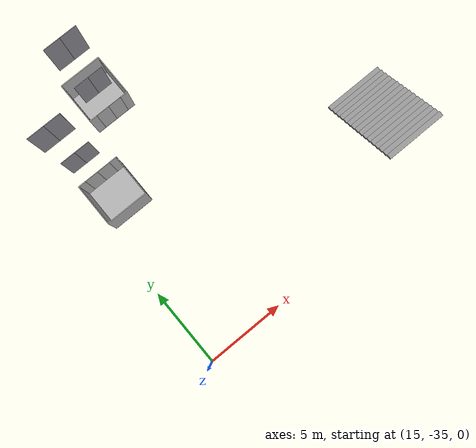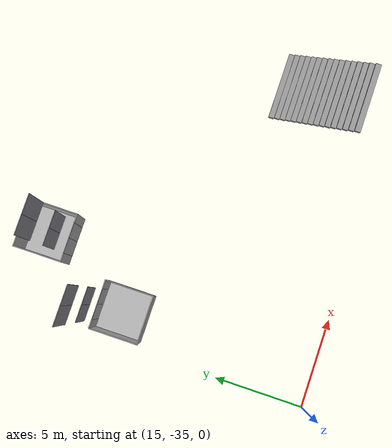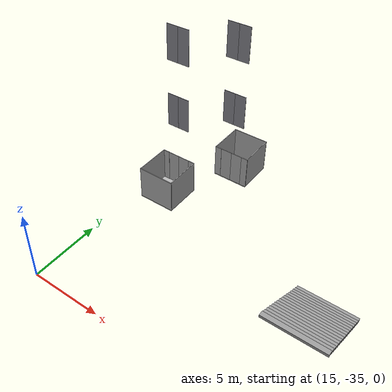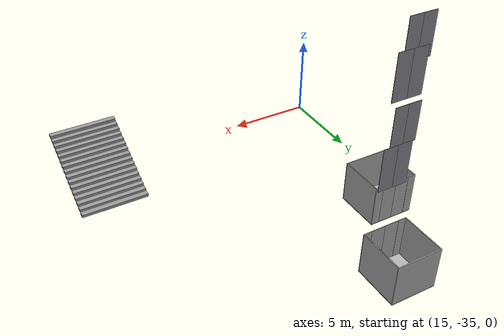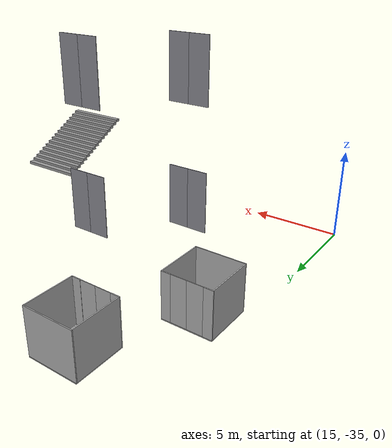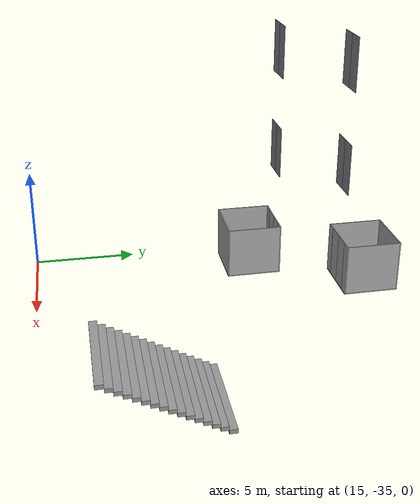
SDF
<sdf version="1.7">
 <world name="world">
  <model name="stairs_new_clone_0">
   <pose>31.03 -26.62000 2.565 0 -0 -1.570796</pose>
   <link name="Stairs">
    <pose>3 1e-06 0 0 -0 0</pose>
    <inertial>
     <mass>1</mass>
     <inertia><ixx>1</ixx><ixy>0</ixy><ixz>0</ixz><iyy>1</iyy><iyz>0</iyz><izz>1</izz></inertia>
    </inertial>
    <visual name="Stairs_Visual_7">
     <pose>0.70875 0 1.09375 0 -0 1.5708</pose>
     <geometry><box><size>3.66 0.28125 0.15625</size></box></geometry>
     <material>
      <script><uri>file://media/materials/scripts/gazebo.material</uri><name>Gazebo/Grey</name></script>
      <ambient>1 1 1 1</ambient>
      <shader type="pixel"><normal_map>__default__</normal_map></shader>
      <diffuse>0.7 0.7 0.7 1</diffuse>
      <specular>0.01 0.01 0.01 1</specular>
      <emissive>0 0 0 1</emissive>
     </material>
     <meta><layer>0</layer></meta>
    </visual>
    <visual name="Stairs_Visual_10">
     <pose>1.5525 0 1.5625 0 -0 1.5708</pose>
     <geometry><box><size>3.66 0.28125 0.15625</size></box></geometry>
     <material>
      <script><uri>file://media/materials/scripts/gazebo.material</uri><name>Gazebo/Grey</name></script>
      <ambient>1 1 1 1</ambient>
      <shader type="pixel"><normal_map>__default__</normal_map></shader>
      <diffuse>0.7 0.7 0.7 1</diffuse>
      <specular>0.01 0.01 0.01 1</specular>
      <emissive>0 0 0 1</emissive>
     </material>
     <meta><layer>0</layer></meta>
    </visual>
    <visual name="Stairs_Visual_11">
     <pose>1.83375 0 1.71875 0 -0 1.5708</pose>
     <geometry><box><size>3.66 0.28125 0.15625</size></box></geometry>
     <material>
      <script><uri>file://media/materials/scripts/gazebo.material</uri><name>Gazebo/Grey</name></script>
      <ambient>1 1 1 1</ambient>
      <shader type="pixel"><normal_map>__default__</normal_map></shader>
      <diffuse>0.7 0.7 0.7 1</diffuse>
      <specular>0.01 0.01 0.01 1</specular>
      <emissive>0 0 0 1</emissive>
     </material>
     <meta><layer>0</layer></meta>
    </visual>
    <visual name="Stairs_Visual_1">
     <pose>-0.97875 0 0.15625 0 -0 1.5708</pose>
     <geometry><box><size>3.66 0.28125 0.15625</size></box></geometry>
     <material>
      <script><uri>file://media/materials/scripts/gazebo.material</uri><name>Gazebo/Grey</name></script>
      <ambient>1 1 1 1</ambient>
      <shader type="pixel"><normal_map>__default__</normal_map></shader>
      <diffuse>0.7 0.7 0.7 1</diffuse>
      <specular>0.01 0.01 0.01 1</specular>
      <emissive>0 0 0 1</emissive>
     </material>
     <meta><layer>0</layer></meta>
    </visual>
    <visual name="Stairs_Visual_8">
     <pose>0.99 0 1.25 0 -0 1.5708</pose>
     <geometry><box><size>3.66 0.28125 0.15625</size></box></geometry>
     <material>
      <script><uri>file://media/materials/scripts/gazebo.material</uri><name>Gazebo/Grey</name></script>
      <ambient>1 1 1 1</ambient>
      <shader type="pixel"><normal_map>__default__</normal_map></shader>
      <diffuse>0.7 0.7 0.7 1</diffuse>
      <specular>0.01 0.01 0.01 1</specular>
      <emissive>0 0 0 1</emissive>
     </material>
     <meta><layer>0</layer></meta>
    </visual>
    <visual name="Stairs_Visual_2">
     <pose>-0.6975 0 0.3125 0 -0 1.5708</pose>
     <geometry><box><size>3.66 0.28125 0.15625</size></box></geometry>
     <material>
      <script><uri>file://media/materials/scripts/gazebo.material</uri><name>Gazebo/Grey</name></script>
      <ambient>1 1 1 1</ambient>
      <shader type="pixel"><normal_map>__default__</normal_map></shader>
      <diffuse>0.7 0.7 0.7 1</diffuse>
      <specular>0.01 0.01 0.01 1</specular>
      <emissive>0 0 0 1</emissive>
     </material>
     <meta><layer>0</layer></meta>
    </visual>
    <visual name="Stairs_Visual_0">
     <pose>-1.27 0 0.005 0 -0 1.5708</pose>
     <geometry><box><size>3.66 0.3 0.17</size></box></geometry>
     <material>
      <script><uri>file://media/materials/scripts/gazebo.material</uri><name>Gazebo/Grey</name></script>
      <ambient>1 1 1 1</ambient>
      <shader type="pixel"><normal_map>__default__</normal_map></shader>
      <diffuse>0.7 0.7 0.7 1</diffuse>
      <specular>0.01 0.01 0.01 1</specular>
      <emissive>0 0 0 1</emissive>
     </material>
     <meta><layer>0</layer></meta>
    </visual>
    <visual name="Stairs_Visual_12">
     <pose>2.115 0 1.875 0 -0 1.5708</pose>
     <geometry><box><size>3.66 0.28125 0.15625</size></box></geometry>
     <material>
      <script><uri>file://media/materials/scripts/gazebo.material</uri><name>Gazebo/Grey</name></script>
      <ambient>1 1 1 1</ambient>
      <shader type="pixel"><normal_map>__default__</normal_map></shader>
      <diffuse>0.7 0.7 0.7 1</diffuse>
      <specular>0.01 0.01 0.01 1</specular>
      <emissive>0 0 0 1</emissive>
     </material>
     <meta><layer>0</layer></meta>
    </visual>
    <visual name="Stairs_Visual_9">
     <pose>1.27125 0 1.40625 0 -0 1.5708</pose>
     <geometry><box><size>3.66 0.28125 0.15625</size></box></geometry>
     <material>
      <script><uri>file://media/materials/scripts/gazebo.material</uri><name>Gazebo/Grey</name></script>
      <ambient>1 1 1 1</ambient>
      <shader type="pixel"><normal_map>__default__</normal_map></shader>
      <diffuse>0.7 0.7 0.7 1</diffuse>
      <specular>0.01 0.01 0.01 1</specular>
      <emissive>0 0 0 1</emissive>
     </material>
     <meta><layer>0</layer></meta>
    </visual>
    <visual name="Stairs_Visual_13">
     <pose>2.39625 0 2.03125 0 -0 1.5708</pose>
     <geometry><box><size>3.66 0.28125 0.15625</size></box></geometry>
     <material>
      <script><uri>file://media/materials/scripts/gazebo.material</uri><name>Gazebo/Grey</name></script>
      <ambient>1 1 1 1</ambient>
      <shader type="pixel"><normal_map>__default__</normal_map></shader>
      <diffuse>0.7 0.7 0.7 1</diffuse>
      <specular>0.01 0.01 0.01 1</specular>
      <emissive>0 0 0 1</emissive>
     </material>
     <meta><layer>0</layer></meta>
    </visual>
    <visual name="Stairs_Visual_4">
     <pose>-0.135 0 0.625 0 -0 1.5708</pose>
     <geometry><box><size>3.66 0.28125 0.15625</size></box></geometry>
     <material>
      <script><uri>file://media/materials/scripts/gazebo.material</uri><name>Gazebo/Grey</name></script>
      <ambient>1 1 1 1</ambient>
      <shader type="pixel"><normal_map>__default__</normal_map></shader>
      <diffuse>0.7 0.7 0.7 1</diffuse>
      <specular>0.01 0.01 0.01 1</specular>
      <emissive>0 0 0 1</emissive>
     </material>
     <meta><layer>0</layer></meta>
    </visual>
    <visual name="Stairs_Visual_5">
     <pose>0.14625 0 0.78125 0 -0 1.5708</pose>
     <geometry><box><size>3.66 0.28125 0.15625</size></box></geometry>
     <material>
      <script><uri>file://media/materials/scripts/gazebo.material</uri><name>Gazebo/Grey</name></script>
      <ambient>1 1 1 1</ambient>
      <shader type="pixel"><normal_map>__default__</normal_map></shader>
      <diffuse>0.7 0.7 0.7 1</diffuse>
      <specular>0.01 0.01 0.01 1</specular>
      <emissive>0 0 0 1</emissive>
     </material>
     <meta><layer>0</layer></meta>
    </visual>
    <visual name="Stairs_Visual_15">
     <pose>2.969 0 2.35 0 -0 1.5708</pose>
     <geometry><box><size>3.66 0.3 0.17</size></box></geometry>
     <material>
      <script><uri>file://media/materials/scripts/gazebo.material</uri><name>Gazebo/Grey</name></script>
      <ambient>1 1 1 1</ambient>
      <shader type="pixel"><normal_map>__default__</normal_map></shader>
      <diffuse>0.7 0.7 0.7 1</diffuse>
      <specular>0.01 0.01 0.01 1</specular>
      <emissive>0 0 0 1</emissive>
     </material>
     <meta><layer>0</layer></meta>
    </visual>
    <visual name="Stairs_Visual_3">
     <pose>-0.41625 0 0.46875 0 -0 1.5708</pose>
     <geometry><box><size>3.66 0.28125 0.15625</size></box></geometry>
     <material>
      <script><uri>file://media/materials/scripts/gazebo.material</uri><name>Gazebo/Grey</name></script>
      <ambient>1 1 1 1</ambient>
      <shader type="pixel"><normal_map>__default__</normal_map></shader>
      <diffuse>0.7 0.7 0.7 1</diffuse>
      <specular>0.01 0.01 0.01 1</specular>
      <emissive>0 0 0 1</emissive>
     </material>
     <meta><layer>0</layer></meta>
    </visual>
    <visual name="Stairs_Visual_6">
     <pose>0.4275 0 0.9375 0 -0 1.5708</pose>
     <geometry><box><size>3.66 0.28125 0.15625</size></box></geometry>
     <material>
      <script><uri>file://media/materials/scripts/gazebo.material</uri><name>Gazebo/Grey</name></script>
      <ambient>1 1 1 1</ambient>
      <shader type="pixel"><normal_map>__default__</normal_map></shader>
      <diffuse>0.7 0.7 0.7 1</diffuse>
      <specular>0.01 0.01 0.01 1</specular>
      <emissive>0 0 0 1</emissive>
     </material>
     <meta><layer>0</layer></meta>
    </visual>
    <visual name="Stairs_Visual_14">
     <pose>2.6775 0 2.1875 0 -0 1.5708</pose>
     <geometry><box><size>3.66 0.28125 0.15625</size></box></geometry>
     <material>
      <script><uri>file://media/materials/scripts/gazebo.material</uri><name>Gazebo/Grey</name></script>
      <ambient>1 1 1 1</ambient>
      <shader type="pixel"><normal_map>__default__</normal_map></shader>
      <diffuse>0.7 0.7 0.7 1</diffuse>
      <specular>0.01 0.01 0.01 1</specular>
      <emissive>0 0 0 1</emissive>
     </material>
     <meta><layer>0</layer></meta>
    </visual>
    <collision name="Stairs_Collision_9">
     <pose>1.27125 0 1.40625 0 -0 1.5708</pose>
     <geometry><box><size>3.66 0.28125 0.15625</size></box></geometry>
     <surface>
      <friction>
       <ode><mu>1</mu><mu2>1</mu2><fdir1>0 0 0</fdir1><slip1>0</slip1><slip2>0</slip2></ode>
       <torsional>
        <coefficient>1</coefficient>
        <patch_radius>0</patch_radius>
        <surface_radius>0</surface_radius>
        <use_patch_radius>1</use_patch_radius>
        <ode><slip>0</slip></ode>
       </torsional>
      </friction>
      <bounce><restitution_coefficient>0</restitution_coefficient><threshold>1e+06</threshold></bounce>
      <contact>
       <collide_without_contact>0</collide_without_contact>
       <collide_without_contact_bitmask>1</collide_without_contact_bitmask>
       <collide_bitmask>1</collide_bitmask>
       <ode>
        <soft_cfm>0</soft_cfm>
        <soft_erp>0.2</soft_erp>
        <kp>1e+13</kp>
        <kd>1</kd>
        <max_vel>0.01</max_vel>
        <min_depth>0</min_depth>
       </ode>
       <bullet>
        <split_impulse>1</split_impulse>
        <split_impulse_penetration_threshold>-0.01</split_impulse_penetration_threshold>
        <soft_cfm>0</soft_cfm>
        <soft_erp>0.2</soft_erp>
        <kp>1e+13</kp>
        <kd>1</kd>
       </bullet>
      </contact>
     </surface>
    </collision>
    <collision name="Stairs_Collision_1">
     <pose>-0.97875 0 0.15625 0 -0 1.5708</pose>
     <geometry><box><size>3.66 0.3 0.1566</size></box></geometry>
     <surface>
      <friction>
       <ode><mu>1</mu><mu2>1</mu2><fdir1>0 0 0</fdir1><slip1>0</slip1><slip2>0</slip2></ode>
       <torsional>
        <coefficient>1</coefficient>
        <patch_radius>0</patch_radius>
        <surface_radius>0</surface_radius>
        <use_patch_radius>1</use_patch_radius>
        <ode><slip>0</slip></ode>
       </torsional>
      </friction>
      <bounce><restitution_coefficient>0</restitution_coefficient><threshold>1e+06</threshold></bounce>
      <contact>
       <collide_without_contact>0</collide_without_contact>
       <collide_without_contact_bitmask>1</collide_without_contact_bitmask>
       <collide_bitmask>1</collide_bitmask>
       <ode>
        <soft_cfm>0</soft_cfm>
        <soft_erp>0.2</soft_erp>
        <kp>1e+13</kp>
        <kd>1</kd>
        <max_vel>0.01</max_vel>
        <min_depth>0</min_depth>
       </ode>
       <bullet>
        <split_impulse>1</split_impulse>
        <split_impulse_penetration_threshold>-0.01</split_impulse_penetration_threshold>
        <soft_cfm>0</soft_cfm>
        <soft_erp>0.2</soft_erp>
        <kp>1e+13</kp>
        <kd>1</kd>
       </bullet>
      </contact>
     </surface>
    </collision>
    <collision name="Stairs_Collision_6">
     <pose>0.4275 0 0.9375 0 -0 1.5708</pose>
     <geometry><box><size>3.66 0.28125 0.15625</size></box></geometry>
     <surface>
      <friction>
       <ode><mu>1</mu><mu2>1</mu2><fdir1>0 0 0</fdir1><slip1>0</slip1><slip2>0</slip2></ode>
       <torsional>
        <coefficient>1</coefficient>
        <patch_radius>0</patch_radius>
        <surface_radius>0</surface_radius>
        <use_patch_radius>1</use_patch_radius>
        <ode><slip>0</slip></ode>
       </torsional>
      </friction>
      <bounce><restitution_coefficient>0</restitution_coefficient><threshold>1e+06</threshold></bounce>
      <contact>
       <collide_without_contact>0</collide_without_contact>
       <collide_without_contact_bitmask>1</collide_without_contact_bitmask>
       <collide_bitmask>1</collide_bitmask>
       <ode>
        <soft_cfm>0</soft_cfm>
        <soft_erp>0.2</soft_erp>
        <kp>1e+13</kp>
        <kd>1</kd>
        <max_vel>0.01</max_vel>
        <min_depth>0</min_depth>
       </ode>
       <bullet>
        <split_impulse>1</split_impulse>
        <split_impulse_penetration_threshold>-0.01</split_impulse_penetration_threshold>
        <soft_cfm>0</soft_cfm>
        <soft_erp>0.2</soft_erp>
        <kp>1e+13</kp>
        <kd>1</kd>
       </bullet>
      </contact>
     </surface>
    </collision>
    <collision name="Stairs_Collision_7">
     <pose>0.70875 0 1.09375 0 -0 1.5708</pose>
     <geometry><box><size>3.66 0.28125 0.15625</size></box></geometry>
     <surface>
      <friction>
       <ode><mu>1</mu><mu2>1</mu2><fdir1>0 0 0</fdir1><slip1>0</slip1><slip2>0</slip2></ode>
       <torsional>
        <coefficient>1</coefficient>
        <patch_radius>0</patch_radius>
        <surface_radius>0</surface_radius>
        <use_patch_radius>1</use_patch_radius>
        <ode><slip>0</slip></ode>
       </torsional>
      </friction>
      <bounce><restitution_coefficient>0</restitution_coefficient><threshold>1e+06</threshold></bounce>
      <contact>
       <collide_without_contact>0</collide_without_contact>
       <collide_without_contact_bitmask>1</collide_without_contact_bitmask>
       <collide_bitmask>1</collide_bitmask>
       <ode>
        <soft_cfm>0</soft_cfm>
        <soft_erp>0.2</soft_erp>
        <kp>1e+13</kp>
        <kd>1</kd>
        <max_vel>0.01</max_vel>
        <min_depth>0</min_depth>
       </ode>
       <bullet>
        <split_impulse>1</split_impulse>
        <split_impulse_penetration_threshold>-0.01</split_impulse_penetration_threshold>
        <soft_cfm>0</soft_cfm>
        <soft_erp>0.2</soft_erp>
        <kp>1e+13</kp>
        <kd>1</kd>
       </bullet>
      </contact>
     </surface>
    </collision>
    <collision name="Stairs_Collision_5">
     <pose>0.14625 0 0.78125 0 -0 1.5708</pose>
     <geometry><box><size>3.66 0.28125 0.15625</size></box></geometry>
     <surface>
      <friction>
       <ode><mu>1</mu><mu2>1</mu2><fdir1>0 0 0</fdir1><slip1>0</slip1><slip2>0</slip2></ode>
       <torsional>
        <coefficient>1</coefficient>
        <patch_radius>0</patch_radius>
        <surface_radius>0</surface_radius>
        <use_patch_radius>1</use_patch_radius>
        <ode><slip>0</slip></ode>
       </torsional>
      </friction>
      <bounce><restitution_coefficient>0</restitution_coefficient><threshold>1e+06</threshold></bounce>
      <contact>
       <collide_without_contact>0</collide_without_contact>
       <collide_without_contact_bitmask>1</collide_without_contact_bitmask>
       <collide_bitmask>1</collide_bitmask>
       <ode>
        <soft_cfm>0</soft_cfm>
        <soft_erp>0.2</soft_erp>
        <kp>1e+13</kp>
        <kd>1</kd>
        <max_vel>0.01</max_vel>
        <min_depth>0</min_depth>
       </ode>
       <bullet>
        <split_impulse>1</split_impulse>
        <split_impulse_penetration_threshold>-0.01</split_impulse_penetration_threshold>
        <soft_cfm>0</soft_cfm>
        <soft_erp>0.2</soft_erp>
        <kp>1e+13</kp>
        <kd>1</kd>
       </bullet>
      </contact>
     </surface>
    </collision>
    <collision name="Stairs_Collision_10">
     <pose>1.5525 0 1.5625 0 -0 1.5708</pose>
     <geometry><box><size>3.66 0.28125 0.15625</size></box></geometry>
     <surface>
      <friction>
       <ode><mu>1</mu><mu2>1</mu2><fdir1>0 0 0</fdir1><slip1>0</slip1><slip2>0</slip2></ode>
       <torsional>
        <coefficient>1</coefficient>
        <patch_radius>0</patch_radius>
        <surface_radius>0</surface_radius>
        <use_patch_radius>1</use_patch_radius>
        <ode><slip>0</slip></ode>
       </torsional>
      </friction>
      <bounce><restitution_coefficient>0</restitution_coefficient><threshold>1e+06</threshold></bounce>
      <contact>
       <collide_without_contact>0</collide_without_contact>
       <collide_without_contact_bitmask>1</collide_without_contact_bitmask>
       <collide_bitmask>1</collide_bitmask>
       <ode>
        <soft_cfm>0</soft_cfm>
        <soft_erp>0.2</soft_erp>
        <kp>1e+13</kp>
        <kd>1</kd>
        <max_vel>0.01</max_vel>
        <min_depth>0</min_depth>
       </ode>
       <bullet>
        <split_impulse>1</split_impulse>
        <split_impulse_penetration_threshold>-0.01</split_impulse_penetration_threshold>
        <soft_cfm>0</soft_cfm>
        <soft_erp>0.2</soft_erp>
        <kp>1e+13</kp>
        <kd>1</kd>
       </bullet>
      </contact>
     </surface>
    </collision>
    <collision name="Stairs_Collision_2">
     <pose>-0.6975 0 0.3125 0 -0 1.5708</pose>
     <geometry><box><size>3.66 0.28125 0.15625</size></box></geometry>
     <surface>
      <friction>
       <ode><mu>1</mu><mu2>1</mu2><fdir1>0 0 0</fdir1><slip1>0</slip1><slip2>0</slip2></ode>
       <torsional>
        <coefficient>1</coefficient>
        <patch_radius>0</patch_radius>
        <surface_radius>0</surface_radius>
        <use_patch_radius>1</use_patch_radius>
        <ode><slip>0</slip></ode>
       </torsional>
      </friction>
      <bounce><restitution_coefficient>0</restitution_coefficient><threshold>1e+06</threshold></bounce>
      <contact>
       <collide_without_contact>0</collide_without_contact>
       <collide_without_contact_bitmask>1</collide_without_contact_bitmask>
       <collide_bitmask>1</collide_bitmask>
       <ode>
        <soft_cfm>0</soft_cfm>
        <soft_erp>0.2</soft_erp>
        <kp>1e+13</kp>
        <kd>1</kd>
        <max_vel>0.01</max_vel>
        <min_depth>0</min_depth>
       </ode>
       <bullet>
        <split_impulse>1</split_impulse>
        <split_impulse_penetration_threshold>-0.01</split_impulse_penetration_threshold>
        <soft_cfm>0</soft_cfm>
        <soft_erp>0.2</soft_erp>
        <kp>1e+13</kp>
        <kd>1</kd>
       </bullet>
      </contact>
     </surface>
    </collision>
    <collision name="Stairs_Collision_8">
     <pose>0.99 0 1.25 0 -0 1.5708</pose>
     <geometry><box><size>3.66 0.28125 0.15625</size></box></geometry>
     <surface>
      <friction>
       <ode><mu>1</mu><mu2>1</mu2><fdir1>0 0 0</fdir1><slip1>0</slip1><slip2>0</slip2></ode>
       <torsional>
        <coefficient>1</coefficient>
        <patch_radius>0</patch_radius>
        <surface_radius>0</surface_radius>
        <use_patch_radius>1</use_patch_radius>
        <ode><slip>0</slip></ode>
       </torsional>
      </friction>
      <bounce><restitution_coefficient>0</restitution_coefficient><threshold>1e+06</threshold></bounce>
      <contact>
       <collide_without_contact>0</collide_without_contact>
       <collide_without_contact_bitmask>1</collide_without_contact_bitmask>
       <collide_bitmask>1</collide_bitmask>
       <ode>
        <soft_cfm>0</soft_cfm>
        <soft_erp>0.2</soft_erp>
        <kp>1e+13</kp>
        <kd>1</kd>
        <max_vel>0.01</max_vel>
        <min_depth>0</min_depth>
       </ode>
       <bullet>
        <split_impulse>1</split_impulse>
        <split_impulse_penetration_threshold>-0.01</split_impulse_penetration_threshold>
        <soft_cfm>0</soft_cfm>
        <soft_erp>0.2</soft_erp>
        <kp>1e+13</kp>
        <kd>1</kd>
       </bullet>
      </contact>
     </surface>
    </collision>
    <collision name="Stairs_Collision_4">
     <pose>-0.135 0 0.625 0 -0 1.5708</pose>
     <geometry><box><size>3.66 0.30125 0.15625</size></box></geometry>
     <surface>
      <friction>
       <ode><mu>1</mu><mu2>1</mu2><fdir1>0 0 0</fdir1><slip1>0</slip1><slip2>0</slip2></ode>
       <torsional>
        <coefficient>1</coefficient>
        <patch_radius>0</patch_radius>
        <surface_radius>0</surface_radius>
        <use_patch_radius>1</use_patch_radius>
        <ode><slip>0</slip></ode>
       </torsional>
      </friction>
      <bounce><restitution_coefficient>0</restitution_coefficient><threshold>1e+06</threshold></bounce>
      <contact>
       <collide_without_contact>0</collide_without_contact>
       <collide_without_contact_bitmask>1</collide_without_contact_bitmask>
       <collide_bitmask>1</collide_bitmask>
       <ode>
        <soft_cfm>0</soft_cfm>
        <soft_erp>0.2</soft_erp>
        <kp>1e+13</kp>
        <kd>1</kd>
        <max_vel>0.01</max_vel>
        <min_depth>0</min_depth>
       </ode>
       <bullet>
        <split_impulse>1</split_impulse>
        <split_impulse_penetration_threshold>-0.01</split_impulse_penetration_threshold>
        <soft_cfm>0</soft_cfm>
        <soft_erp>0.2</soft_erp>
        <kp>1e+13</kp>
        <kd>1</kd>
       </bullet>
      </contact>
     </surface>
    </collision>
    <collision name="Stairs_Collision_13">
     <pose>2.39625 0 2.03125 0 -0 1.5708</pose>
     <geometry><box><size>3.66 0.28125 0.15625</size></box></geometry>
     <surface>
      <friction>
       <ode><mu>1</mu><mu2>1</mu2><fdir1>0 0 0</fdir1><slip1>0</slip1><slip2>0</slip2></ode>
       <torsional>
        <coefficient>1</coefficient>
        <patch_radius>0</patch_radius>
        <surface_radius>0</surface_radius>
        <use_patch_radius>1</use_patch_radius>
        <ode><slip>0</slip></ode>
       </torsional>
      </friction>
      <bounce><restitution_coefficient>0</restitution_coefficient><threshold>1e+06</threshold></bounce>
      <contact>
       <collide_without_contact>0</collide_without_contact>
       <collide_without_contact_bitmask>1</collide_without_contact_bitmask>
       <collide_bitmask>1</collide_bitmask>
       <ode>
        <soft_cfm>0</soft_cfm>
        <soft_erp>0.2</soft_erp>
        <kp>1e+13</kp>
        <kd>1</kd>
        <max_vel>0.01</max_vel>
        <min_depth>0</min_depth>
       </ode>
       <bullet>
        <split_impulse>1</split_impulse>
        <split_impulse_penetration_threshold>-0.01</split_impulse_penetration_threshold>
        <soft_cfm>0</soft_cfm>
        <soft_erp>0.2</soft_erp>
        <kp>1e+13</kp>
        <kd>1</kd>
       </bullet>
      </contact>
     </surface>
    </collision>
    <collision name="Stairs_Collision_11">
     <pose>1.83375 0 1.71875 0 -0 1.5708</pose>
     <geometry><box><size>3.66 0.28125 0.15625</size></box></geometry>
     <surface>
      <friction>
       <ode><mu>1</mu><mu2>1</mu2><fdir1>0 0 0</fdir1><slip1>0</slip1><slip2>0</slip2></ode>
       <torsional>
        <coefficient>1</coefficient>
        <patch_radius>0</patch_radius>
        <surface_radius>0</surface_radius>
        <use_patch_radius>1</use_patch_radius>
        <ode><slip>0</slip></ode>
       </torsional>
      </friction>
      <bounce><restitution_coefficient>0</restitution_coefficient><threshold>1e+06</threshold></bounce>
      <contact>
       <collide_without_contact>0</collide_without_contact>
       <collide_without_contact_bitmask>1</collide_without_contact_bitmask>
       <collide_bitmask>1</collide_bitmask>
       <ode>
        <soft_cfm>0</soft_cfm>
        <soft_erp>0.2</soft_erp>
        <kp>1e+13</kp>
        <kd>1</kd>
        <max_vel>0.01</max_vel>
        <min_depth>0</min_depth>
       </ode>
       <bullet>
        <split_impulse>1</split_impulse>
        <split_impulse_penetration_threshold>-0.01</split_impulse_penetration_threshold>
        <soft_cfm>0</soft_cfm>
        <soft_erp>0.2</soft_erp>
        <kp>1e+13</kp>
        <kd>1</kd>
       </bullet>
      </contact>
     </surface>
    </collision>
    <collision name="Stairs_Collision_0">
     <pose>-1.27 0 -0.005 0 -0 1.5708</pose>
     <geometry><box><size>3.66 0.3 0.2</size></box></geometry>
     <surface>
      <friction>
       <ode><mu>1</mu><mu2>1</mu2><fdir1>0 0 0</fdir1><slip1>0</slip1><slip2>0</slip2></ode>
       <torsional>
        <coefficient>1</coefficient>
        <patch_radius>0</patch_radius>
        <surface_radius>0</surface_radius>
        <use_patch_radius>1</use_patch_radius>
        <ode><slip>0</slip></ode>
       </torsional>
      </friction>
      <bounce><restitution_coefficient>0</restitution_coefficient><threshold>1e+06</threshold></bounce>
      <contact>
       <collide_without_contact>0</collide_without_contact>
       <collide_without_contact_bitmask>1</collide_without_contact_bitmask>
       <collide_bitmask>1</collide_bitmask>
       <ode>
        <soft_cfm>0</soft_cfm>
        <soft_erp>0.2</soft_erp>
        <kp>1e+13</kp>
        <kd>1</kd>
        <max_vel>0.01</max_vel>
        <min_depth>0</min_depth>
       </ode>
       <bullet>
        <split_impulse>1</split_impulse>
        <split_impulse_penetration_threshold>-0.01</split_impulse_penetration_threshold>
        <soft_cfm>0</soft_cfm>
        <soft_erp>0.2</soft_erp>
        <kp>1e+13</kp>
        <kd>1</kd>
       </bullet>
      </contact>
     </surface>
    </collision>
    <collision name="Stairs_Collision_3">
     <pose>-0.41625 0 0.46875 0 -0 1.5708</pose>
     <geometry><box><size>3.66 0.28125 0.15625</size></box></geometry>
     <surface>
      <friction>
       <ode><mu>1</mu><mu2>1</mu2><fdir1>0 0 0</fdir1><slip1>0</slip1><slip2>0</slip2></ode>
       <torsional>
        <coefficient>1</coefficient>
        <patch_radius>0</patch_radius>
        <surface_radius>0</surface_radius>
        <use_patch_radius>1</use_patch_radius>
        <ode><slip>0</slip></ode>
       </torsional>
      </friction>
      <bounce><restitution_coefficient>0</restitution_coefficient><threshold>1e+06</threshold></bounce>
      <contact>
       <collide_without_contact>0</collide_without_contact>
       <collide_without_contact_bitmask>1</collide_without_contact_bitmask>
       <collide_bitmask>1</collide_bitmask>
       <ode>
        <soft_cfm>0</soft_cfm>
        <soft_erp>0.2</soft_erp>
        <kp>1e+13</kp>
        <kd>1</kd>
        <max_vel>0.01</max_vel>
        <min_depth>0</min_depth>
       </ode>
       <bullet>
        <split_impulse>1</split_impulse>
        <split_impulse_penetration_threshold>-0.01</split_impulse_penetration_threshold>
        <soft_cfm>0</soft_cfm>
        <soft_erp>0.2</soft_erp>
        <kp>1e+13</kp>
        <kd>1</kd>
       </bullet>
      </contact>
     </surface>
    </collision>
    <collision name="Stairs_Collision_12">
     <pose>2.115 0 1.875 0 -0 1.5708</pose>
     <geometry><box><size>3.66 0.28125 0.15625</size></box></geometry>
     <surface>
      <friction>
       <ode><mu>1</mu><mu2>1</mu2><fdir1>0 0 0</fdir1><slip1>0</slip1><slip2>0</slip2></ode>
       <torsional>
        <coefficient>1</coefficient>
        <patch_radius>0</patch_radius>
        <surface_radius>0</surface_radius>
        <use_patch_radius>1</use_patch_radius>
        <ode><slip>0</slip></ode>
       </torsional>
      </friction>
      <bounce><restitution_coefficient>0</restitution_coefficient><threshold>1e+06</threshold></bounce>
      <contact>
       <collide_without_contact>0</collide_without_contact>
       <collide_without_contact_bitmask>1</collide_without_contact_bitmask>
       <collide_bitmask>1</collide_bitmask>
       <ode>
        <soft_cfm>0</soft_cfm>
        <soft_erp>0.2</soft_erp>
        <kp>1e+13</kp>
        <kd>1</kd>
        <max_vel>0.01</max_vel>
        <min_depth>0</min_depth>
       </ode>
       <bullet>
        <split_impulse>1</split_impulse>
        <split_impulse_penetration_threshold>-0.01</split_impulse_penetration_threshold>
        <soft_cfm>0</soft_cfm>
        <soft_erp>0.2</soft_erp>
        <kp>1e+13</kp>
        <kd>1</kd>
       </bullet>
      </contact>
     </surface>
    </collision>
    <collision name="Stairs_Collision_14">
     <pose>2.6775 0 2.1875 0 -0 1.5708</pose>
     <geometry><box><size>3.66 0.28125 0.15625</size></box></geometry>
     <surface>
      <friction>
       <ode><mu>1</mu><mu2>1</mu2><fdir1>0 0 0</fdir1><slip1>0</slip1><slip2>0</slip2></ode>
       <torsional>
        <coefficient>1</coefficient>
        <patch_radius>0</patch_radius>
        <surface_radius>0</surface_radius>
        <use_patch_radius>1</use_patch_radius>
        <ode><slip>0</slip></ode>
       </torsional>
      </friction>
      <bounce><restitution_coefficient>0</restitution_coefficient><threshold>1e+06</threshold></bounce>
      <contact>
       <collide_without_contact>0</collide_without_contact>
       <collide_without_contact_bitmask>1</collide_without_contact_bitmask>
       <collide_bitmask>1</collide_bitmask>
       <ode>
        <soft_cfm>0</soft_cfm>
        <soft_erp>0.2</soft_erp>
        <kp>1e+13</kp>
        <kd>1</kd>
        <max_vel>0.01</max_vel>
        <min_depth>0</min_depth>
       </ode>
       <bullet>
        <split_impulse>1</split_impulse>
        <split_impulse_penetration_threshold>-0.01</split_impulse_penetration_threshold>
        <soft_cfm>0</soft_cfm>
        <soft_erp>0.2</soft_erp>
        <kp>1e+13</kp>
        <kd>1</kd>
       </bullet>
      </contact>
     </surface>
    </collision>
    <collision name="Stairs_Collision_15">
     <pose>2.969 0 2.35 0 -0 1.5708</pose>
     <geometry><box><size>3.66 0.3 0.17</size></box></geometry>
     <surface>
      <friction>
       <ode><mu>1</mu><mu2>1</mu2><fdir1>0 0 0</fdir1><slip1>0</slip1><slip2>0</slip2></ode>
       <torsional>
        <coefficient>1</coefficient>
        <patch_radius>0</patch_radius>
        <surface_radius>0</surface_radius>
        <use_patch_radius>1</use_patch_radius>
        <ode><slip>0</slip></ode>
       </torsional>
      </friction>
      <bounce><restitution_coefficient>0</restitution_coefficient><threshold>1e+06</threshold></bounce>
      <contact>
       <collide_without_contact>0</collide_without_contact>
       <collide_without_contact_bitmask>1</collide_without_contact_bitmask>
       <collide_bitmask>1</collide_bitmask>
       <ode>
        <soft_cfm>0</soft_cfm>
        <soft_erp>0.2</soft_erp>
        <kp>1e+13</kp>
        <kd>1</kd>
        <max_vel>0.01</max_vel>
        <min_depth>0</min_depth>
       </ode>
       <bullet>
        <split_impulse>1</split_impulse>
        <split_impulse_penetration_threshold>-0.01</split_impulse_penetration_threshold>
        <soft_cfm>0</soft_cfm>
        <soft_erp>0.2</soft_erp>
        <kp>1e+13</kp>
        <kd>1</kd>
       </bullet>
      </contact>
     </surface>
    </collision>
    <scale>1 1 1</scale>
   </link>
   <static>1</static>
   <pose>36.5717 -39.1437 0.065 0 -0 1.5708</pose>
  </model>
  <model name="Lift1_floor2_safety_doors">
   <static>true</static>
   <pose>19.686012 -20.216825 6.25 0 0 0</pose>
   <link name="doors">
    <visual name="left_door_visual">
     <pose>-0.425 0 0 0 0 0</pose>
     <geometry><box><size>0.85 0.03 2.5</size></box></geometry>
     <material><ambient>0.35 0.35 0.38 1</ambient><diffuse>0.55 0.55 0.58 1</diffuse></material>
    </visual>
    <visual name="right_door_visual">
     <pose>0.425 0 0 0 0 0</pose>
     <geometry><box><size>0.85 0.03 2.5</size></box></geometry>
     <material><ambient>0.35 0.35 0.38 1</ambient><diffuse>0.55 0.55 0.58 1</diffuse></material>
    </visual>
    <collision name="closed_portal_collision">
     <geometry><box><size>1.7 0.05 2.5</size></box></geometry>
    </collision>
   </link>
  </model>
  <model name="Lift1_floor3_safety_doors">
   <static>true</static>
   <pose>19.686012 -20.216825 11.25 0 0 0</pose>
   <link name="doors">
    <visual name="left_door_visual">
     <pose>-0.425 0 0 0 0 0</pose>
     <geometry><box><size>0.85 0.03 2.5</size></box></geometry>
     <material><ambient>0.35 0.35 0.38 1</ambient><diffuse>0.55 0.55 0.58 1</diffuse></material>
    </visual>
    <visual name="right_door_visual">
     <pose>0.425 0 0 0 0 0</pose>
     <geometry><box><size>0.85 0.03 2.5</size></box></geometry>
     <material><ambient>0.35 0.35 0.38 1</ambient><diffuse>0.55 0.55 0.58 1</diffuse></material>
    </visual>
    <collision name="closed_portal_collision">
     <geometry><box><size>1.7 0.05 2.5</size></box></geometry>
    </collision>
   </link>
  </model>
  <model name="Lift2_floor2_safety_doors">
   <static>true</static>
   <pose>16.880 -22.778928 6.25 0 0 0</pose>
   <link name="doors">
    <visual name="left_door_visual">
     <pose>-0.425 0 0 0 0 0</pose>
     <geometry><box><size>0.85 0.03 2.5</size></box></geometry>
     <material><ambient>0.35 0.35 0.38 1</ambient><diffuse>0.55 0.55 0.58 1</diffuse></material>
    </visual>
    <visual name="right_door_visual">
     <pose>0.425 0 0 0 0 0</pose>
     <geometry><box><size>0.85 0.03 2.5</size></box></geometry>
     <material><ambient>0.35 0.35 0.38 1</ambient><diffuse>0.55 0.55 0.58 1</diffuse></material>
    </visual>
    <collision name="closed_portal_collision">
     <geometry><box><size>1.7 0.05 2.5</size></box></geometry>
    </collision>
   </link>
  </model>
  <model name="Lift2_floor3_safety_doors">
   <static>true</static>
   <pose>16.880 -22.778928 11.25 0 0 0</pose>
   <link name="doors">
    <visual name="left_door_visual">
     <pose>-0.425 0 0 0 0 0</pose>
     <geometry><box><size>0.85 0.03 2.5</size></box></geometry>
     <material><ambient>0.35 0.35 0.38 1</ambient><diffuse>0.55 0.55 0.58 1</diffuse></material>
    </visual>
    <visual name="right_door_visual">
     <pose>0.425 0 0 0 0 0</pose>
     <geometry><box><size>0.85 0.03 2.5</size></box></geometry>
     <material><ambient>0.35 0.35 0.38 1</ambient><diffuse>0.55 0.55 0.58 1</diffuse></material>
    </visual>
    <collision name="closed_portal_collision">
     <geometry><box><size>1.7 0.05 2.5</size></box></geometry>
    </collision>
   </link>
  </model>
  <model name="Lift1">
   <static>true</static>
   <link name="platform">
    <gravity>false</gravity>
    <inertial>
     <mass>1200</mass>
     <inertia><ixx>729.2500000000001</ixx><iyy>729.2500000000001</iyy><izz>1458.0000000000002</izz></inertia>
    </inertial>
    <visual name="floor_visual">
     <pose>0 0 -0.025 0 0 0</pose>
     <geometry><box><size>2.7 2.7 0.05</size></box></geometry>
     <material>
      <ambient>0.5 0.5 0.5 1</ambient>
      <diffuse>0.7 0.7 0.7 1</diffuse>
      <specular>0.6 0.6 0.6 1</specular>
      <emissive>0.1 0.1 0.1 1</emissive>
     </material>
    </visual>
    <collision name="floor_collision">
     <pose>0 0 -0.025 0 0 0</pose>
     <geometry><box><size>2.7 2.7 0.05</size></box></geometry>
     <surface><contact><collide_bitmask>0x01</collide_bitmask></contact></surface>
    </collision>
    <visual name="frontwall1_visual">
     <pose>0.0 1.3250000000000002 1.25 0 0 0</pose>
     <geometry><box><size>2.7 0.05 2.5</size></box></geometry>
     <material>
      <ambient>0.5 0.5 0.5 1</ambient>
      <diffuse>0.7 0.7 0.7 1</diffuse>
      <specular>0.6 0.6 0.6 1</specular>
      <emissive>0.1 0.1 0.1 1</emissive>
     </material>
    </visual>
    <collision name="frontwall1_collision">
     <pose>0.0 1.3250000000000002 1.25 0 0 0</pose>
     <geometry><box><size>2.7 0.05 2.5</size></box></geometry>
     <surface><contact><collide_bitmask>0x01</collide_bitmask></contact></surface>
    </collision>
    <visual name="backwall1_visual">
     <pose>-1.1 -1.3250000000000002 1.25 0 0 0</pose>
     <geometry><box><size>0.5000000000000001 0.05 2.5</size></box></geometry>
     <material>
      <ambient>0.5 0.5 0.5 1</ambient>
      <diffuse>0.7 0.7 0.7 1</diffuse>
      <specular>0.6 0.6 0.6 1</specular>
      <emissive>0.1 0.1 0.1 1</emissive>
     </material>
    </visual>
    <collision name="backwall1_collision">
     <pose>-1.1 -1.3250000000000002 1.25 0 0 0</pose>
     <geometry><box><size>0.5000000000000001 0.05 2.5</size></box></geometry>
     <surface><contact><collide_bitmask>0x01</collide_bitmask></contact></surface>
    </collision>
    <visual name="backwall2_visual">
     <pose>1.1 -1.3250000000000002 1.25 0 0 0</pose>
     <geometry><box><size>0.5000000000000001 0.05 2.5</size></box></geometry>
     <material>
      <ambient>0.5 0.5 0.5 1</ambient>
      <diffuse>0.7 0.7 0.7 1</diffuse>
      <specular>0.6 0.6 0.6 1</specular>
      <emissive>0.1 0.1 0.1 1</emissive>
     </material>
    </visual>
    <collision name="backwall2_collision">
     <pose>1.1 -1.3250000000000002 1.25 0 0 0</pose>
     <geometry><box><size>0.5000000000000001 0.05 2.5</size></box></geometry>
     <surface><contact><collide_bitmask>0x01</collide_bitmask></contact></surface>
    </collision>
    <visual name="leftwall1_visual">
     <pose>-1.3250000000000002 0.0 1.25 0 0 1.5707963267948966</pose>
     <geometry><box><size>2.6 0.05 2.5</size></box></geometry>
     <material>
      <ambient>0.5 0.5 0.5 1</ambient>
      <diffuse>0.7 0.7 0.7 1</diffuse>
      <specular>0.6 0.6 0.6 1</specular>
      <emissive>0.1 0.1 0.1 1</emissive>
     </material>
    </visual>
    <collision name="leftwall1_collision">
     <pose>-1.3250000000000002 0.0 1.25 0 0 1.5707963267948966</pose>
     <geometry><box><size>2.6 0.05 2.5</size></box></geometry>
     <surface><contact><collide_bitmask>0x01</collide_bitmask></contact></surface>
    </collision>
    <visual name="rightwall1_visual">
     <pose>1.3250000000000002 0.0 1.25 0 0 1.5707963267948966</pose>
     <geometry><box><size>2.6 0.05 2.5</size></box></geometry>
     <material>
      <ambient>0.5 0.5 0.5 1</ambient>
      <diffuse>0.7 0.7 0.7 1</diffuse>
      <specular>0.6 0.6 0.6 1</specular>
      <emissive>0.1 0.1 0.1 1</emissive>
     </material>
    </visual>
    <collision name="rightwall1_collision">
     <pose>1.3250000000000002 0.0 1.25 0 0 1.5707963267948966</pose>
     <geometry><box><size>2.6 0.05 2.5</size></box></geometry>
     <surface><contact><collide_bitmask>0x01</collide_bitmask></contact></surface>
    </collision>
   </link>
   <link name="ramp_plate">
    <pose>0.05  -0.90  -0.02   0 0 0</pose>
    <inertial><mass>5.0</mass><inertia><ixx>0.2</ixx><iyy>0.3</iyy><izz>0.3</izz></inertia></inertial>
    <collision name="col">
     <geometry><box><size>1.8 0.75 0.03</size></box></geometry>
     <surface>
      <friction><ode><mu>1.2</mu><mu2>1.2</mu2></ode></friction>
      <bounce><restitution_coefficient>0.0</restitution_coefficient></bounce>
     </surface>
    </collision>
    <visual name="vis">
     <geometry><box><size>1.8 0.75 0.03</size></box></geometry>
     <material>
      <script><uri>file://media/materials/scripts/gazebo.material</uri><name>Gazebo/Black</name></script>
     </material>
    </visual>
    <gravity>false</gravity>
   </link>
   <joint name="ramp_slide_joint" type="prismatic">
    <parent>platform</parent>
    <child>ramp_plate</child>
    <axis>
     <xyz>0 -1 0</xyz>
     <limit><lower>-0.01</lower><upper>0.35</upper><effort>1e5</effort><velocity>1.0</velocity></limit>
     <dynamics damping="50.0" friction="1.0"/>
    </axis>
   </joint>
   <joint name="cabin_joint" type="prismatic">
    <parent>world</parent>
    <child>platform</child>
    <axis>
     <xyz>0 0 1</xyz>
     <limit><lower>0.0</lower><upper>16.0</upper><effort>1e6</effort></limit>
     <dynamics damping="80.0" friction="1.0"/>
    </axis>
   </joint>
   <link name="right_door">
    <pose>0.425 -1.3250000000000002 1.25 0 0 0</pose>
    <visual name="right_door_visual">
     <geometry><box><size>0.85 0.03 2.5</size></box></geometry>
     <material>
      <ambient>0.5 0.5 0.5 1</ambient>
      <diffuse>0.7 0.7 0.7 1</diffuse>
      <specular>0.6 0.6 0.6 1</specular>
      <emissive>0.1 0.1 0.1 1</emissive>
     </material>
    </visual>
    <collision name="right_door_collision">
     <geometry><box><size>0.85 0.03 2.5</size></box></geometry>
     <surface><contact><collide_bitmask>0x02</collide_bitmask></contact></surface>
    </collision>
   </link>
   <joint name="right_joint" type="prismatic">
    <parent>platform</parent>
    <child>right_door</child>
    <axis><xyz>1 0 0</xyz><limit><lower>0</lower><upper>0.85</upper></limit><dynamics damping="10.0"/></axis>
   </joint>
   <link name="left_door">
    <pose>-0.425 -1.3250000000000002 1.25 0 0 0</pose>
    <visual name="left_door_visual">
     <geometry><box><size>0.85 0.03 2.5</size></box></geometry>
     <material>
      <ambient>0.5 0.5 0.5 1</ambient>
      <diffuse>0.7 0.7 0.7 1</diffuse>
      <specular>0.6 0.6 0.6 1</specular>
      <emissive>0.1 0.1 0.1 1</emissive>
     </material>
    </visual>
    <collision name="left_door_collision">
     <geometry><box><size>0.85 0.03 2.5</size></box></geometry>
     <surface><contact><collide_bitmask>0x02</collide_bitmask></contact></surface>
    </collision>
   </link>
   <joint name="left_joint" type="prismatic">
    <parent>platform</parent>
    <child>left_door</child>
    <axis><xyz>1 0 0</xyz><limit><lower>-0.85</lower><upper>0</upper></limit><dynamics damping="10.0"/></axis>
   </joint>
   <pose>19.686012 -18.891825 0 0 0 0.0</pose>
  </model>
  <model name="Lift2">
   <static>true</static>
   <link name="platform">
    <gravity>false</gravity>
    <inertial>
     <mass>1200</mass>
     <inertia><ixx>729.2500000000001</ixx><iyy>729.2500000000001</iyy><izz>1458.0000000000002</izz></inertia>
    </inertial>
    <visual name="floor_visual">
     <pose>0 0 -0.025 0 0 0</pose>
     <geometry><box><size>2.7 2.7 0.05</size></box></geometry>
     <material>
      <ambient>0.5 0.5 0.5 1</ambient>
      <diffuse>0.7 0.7 0.7 1</diffuse>
      <specular>0.6 0.6 0.6 1</specular>
      <emissive>0.1 0.1 0.1 1</emissive>
     </material>
    </visual>
    <collision name="floor_collision">
     <pose>0 0 -0.025 0 0 0</pose>
     <geometry><box><size>2.7 2.7 0.05</size></box></geometry>
     <surface><contact><collide_bitmask>0x01</collide_bitmask></contact></surface>
    </collision>
    <visual name="frontwall1_visual">
     <pose>-1.1 1.3250000000000002 1.25 0 0 0</pose>
     <geometry><box><size>0.5000000000000001 0.05 2.5</size></box></geometry>
     <material>
      <ambient>0.5 0.5 0.5 1</ambient>
      <diffuse>0.7 0.7 0.7 1</diffuse>
      <specular>0.6 0.6 0.6 1</specular>
      <emissive>0.1 0.1 0.1 1</emissive>
     </material>
    </visual>
    <collision name="frontwall1_collision">
     <pose>-1.1 1.3250000000000002 1.25 0 0 0</pose>
     <geometry><box><size>0.5000000000000001 0.05 2.5</size></box></geometry>
     <surface><contact><collide_bitmask>0x01</collide_bitmask></contact></surface>
    </collision>
    <visual name="frontwall2_visual">
     <pose>1.1 1.3250000000000002 1.25 0 0 0</pose>
     <geometry><box><size>0.5000000000000001 0.05 2.5</size></box></geometry>
     <material>
      <ambient>0.5 0.5 0.5 1</ambient>
      <diffuse>0.7 0.7 0.7 1</diffuse>
      <specular>0.6 0.6 0.6 1</specular>
      <emissive>0.1 0.1 0.1 1</emissive>
     </material>
    </visual>
    <collision name="frontwall2_collision">
     <pose>1.1 1.3250000000000002 1.25 0 0 0</pose>
     <geometry><box><size>0.5000000000000001 0.05 2.5</size></box></geometry>
     <surface><contact><collide_bitmask>0x01</collide_bitmask></contact></surface>
    </collision>
    <visual name="backwall1_visual">
     <pose>0.0 -1.3250000000000002 1.25 0 0 0</pose>
     <geometry><box><size>2.7 0.05 2.5</size></box></geometry>
     <material>
      <ambient>0.5 0.5 0.5 1</ambient>
      <diffuse>0.7 0.7 0.7 1</diffuse>
      <specular>0.6 0.6 0.6 1</specular>
      <emissive>0.1 0.1 0.1 1</emissive>
     </material>
    </visual>
    <collision name="backwall1_collision">
     <pose>0.0 -1.3250000000000002 1.25 0 0 0</pose>
     <geometry><box><size>2.7 0.05 2.5</size></box></geometry>
     <surface><contact><collide_bitmask>0x01</collide_bitmask></contact></surface>
    </collision>
    <visual name="leftwall1_visual">
     <pose>-1.3250000000000002 0.0 1.25 0 0 1.5707963267948966</pose>
     <geometry><box><size>2.6 0.05 2.5</size></box></geometry>
     <material>
      <ambient>0.5 0.5 0.5 1</ambient>
      <diffuse>0.7 0.7 0.7 1</diffuse>
      <specular>0.6 0.6 0.6 1</specular>
      <emissive>0.1 0.1 0.1 1</emissive>
     </material>
    </visual>
    <collision name="leftwall1_collision">
     <pose>-1.3250000000000002 0.0 1.25 0 0 1.5707963267948966</pose>
     <geometry><box><size>2.6 0.05 2.5</size></box></geometry>
     <surface><contact><collide_bitmask>0x01</collide_bitmask></contact></surface>
    </collision>
    <visual name="rightwall1_visual">
     <pose>1.3250000000000002 0.0 1.25 0 0 1.5707963267948966</pose>
     <geometry><box><size>2.6 0.05 2.5</size></box></geometry>
     <material>
      <ambient>0.5 0.5 0.5 1</ambient>
      <diffuse>0.7 0.7 0.7 1</diffuse>
      <specular>0.6 0.6 0.6 1</specular>
      <emissive>0.1 0.1 0.1 1</emissive>
     </material>
    </visual>
    <collision name="rightwall1_collision">
     <pose>1.3250000000000002 0.0 1.25 0 0 1.5707963267948966</pose>
     <geometry><box><size>2.6 0.05 2.5</size></box></geometry>
     <surface><contact><collide_bitmask>0x01</collide_bitmask></contact></surface>
    </collision>
   </link>
   <link name="ramp_plate">
    <pose>0.03  0.90  -0.02   0 0 0</pose>
    <inertial><mass>5.0</mass><inertia><ixx>0.2</ixx><iyy>0.3</iyy><izz>0.3</izz></inertia></inertial>
    <collision name="col">
     <geometry><box><size>1.8 0.75 0.03</size></box></geometry>
     <surface>
      <friction><ode><mu>1.2</mu><mu2>1.2</mu2></ode></friction>
      <bounce><restitution_coefficient>0.0</restitution_coefficient></bounce>
     </surface>
    </collision>
    <visual name="vis">
     <geometry><box><size>1.80 0.75 0.03</size></box></geometry>
     <material>
      <script><uri>file://media/materials/scripts/gazebo.material</uri><name>Gazebo/Black</name></script>
     </material>
    </visual>
    <gravity>false</gravity>
   </link>
   <joint name="ramp_slide_joint" type="prismatic">
    <parent>platform</parent>
    <child>ramp_plate</child>
    <axis>
     <xyz>0 1 0</xyz>
     <limit><lower>-0.01</lower><upper>0.35</upper><effort>1e5</effort><velocity>1.0</velocity></limit>
     <dynamics damping="50.0" friction="1.0"/>
    </axis>
   </joint>
   <joint name="cabin_joint" type="prismatic">
    <parent>world</parent>
    <child>platform</child>
    <axis>
     <xyz>0 0 1</xyz>
     <limit><lower>0.0</lower><upper>16.0</upper><effort>1e6</effort></limit>
     <dynamics damping="80.0" friction="1.0"/>
    </axis>
   </joint>
   <link name="right_door">
    <pose>0.425 1.3250000000000002 1.25 0 0 0</pose>
    <visual name="right_door_visual">
     <geometry><box><size>0.85 0.03 2.5</size></box></geometry>
     <material>
      <ambient>0.5 0.5 0.5 1</ambient>
      <diffuse>0.7 0.7 0.7 1</diffuse>
      <specular>0.6 0.6 0.6 1</specular>
      <emissive>0.1 0.1 0.1 1</emissive>
     </material>
    </visual>
    <collision name="right_door_collision">
     <geometry><box><size>0.85 0.03 2.5</size></box></geometry>
     <surface><contact><collide_bitmask>0x02</collide_bitmask></contact></surface>
    </collision>
   </link>
   <joint name="right_joint" type="prismatic">
    <parent>platform</parent>
    <child>right_door</child>
    <axis><xyz>1 0 0</xyz><limit><lower>0</lower><upper>0.85</upper></limit><dynamics damping="10.0"/></axis>
   </joint>
   <link name="left_door">
    <pose>-0.425 1.3250000000000002 1.25 0 0 0</pose>
    <visual name="left_door_visual">
     <geometry><box><size>0.85 0.03 2.5</size></box></geometry>
     <material>
      <ambient>0.5 0.5 0.5 1</ambient>
      <diffuse>0.7 0.7 0.7 1</diffuse>
      <specular>0.6 0.6 0.6 1</specular>
      <emissive>0.1 0.1 0.1 1</emissive>
     </material>
    </visual>
    <collision name="left_door_collision">
     <geometry><box><size>0.85 0.03 2.5</size></box></geometry>
     <surface><contact><collide_bitmask>0x02</collide_bitmask></contact></surface>
    </collision>
   </link>
   <joint name="left_joint" type="prismatic">
    <parent>platform</parent>
    <child>left_door</child>
    <axis><xyz>1 0 0</xyz><limit><lower>-0.85</lower><upper>0</upper></limit><dynamics damping="10.0"/></axis>
   </joint>
   <pose>16.880 -24.103928 0 0 0 0.0</pose>
  </model>
 </world>
</sdf>
